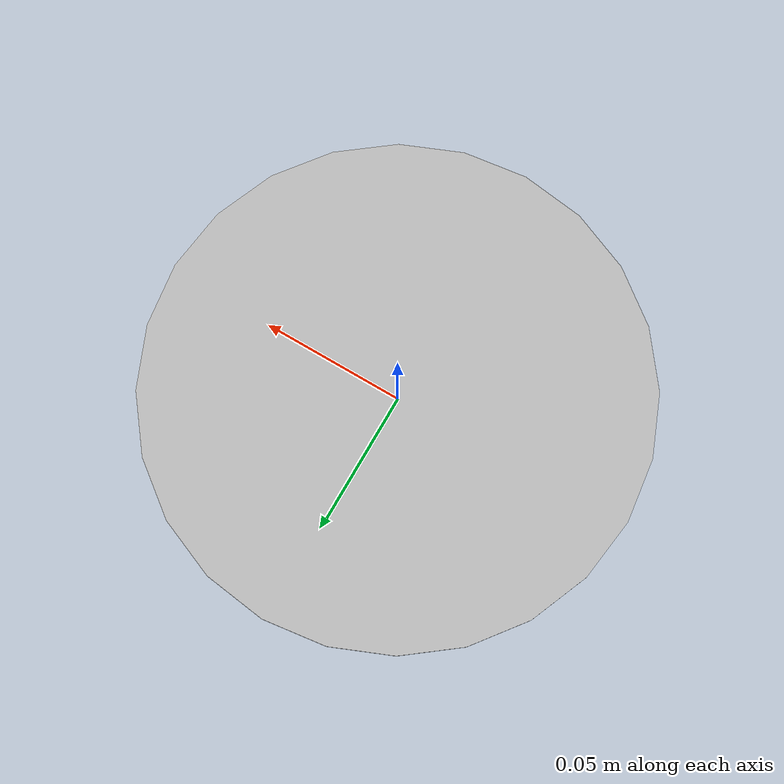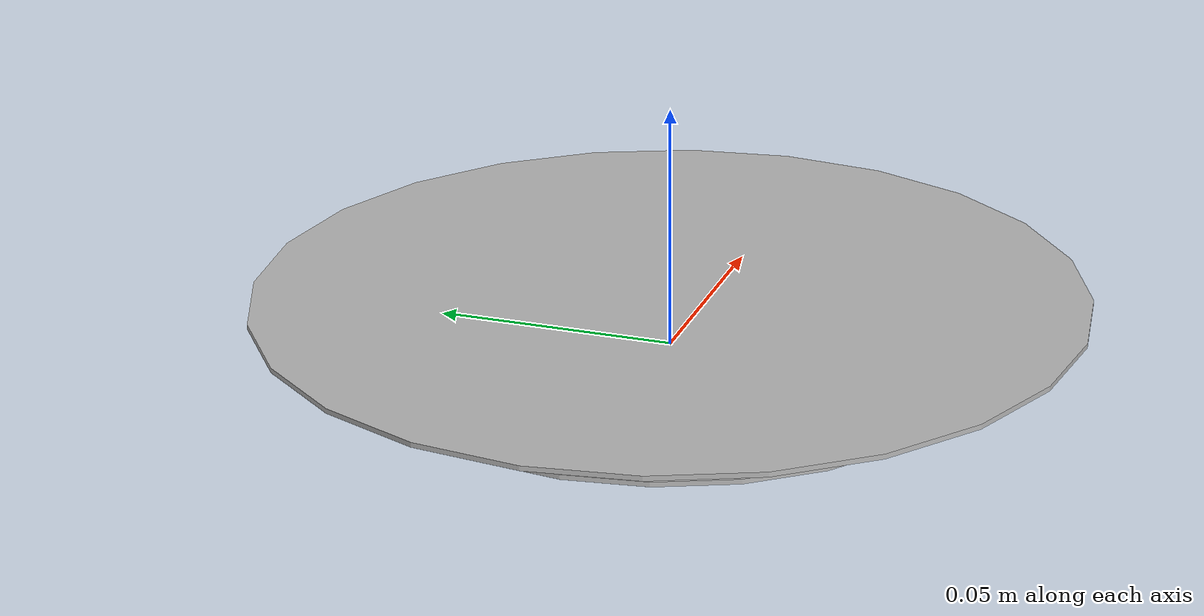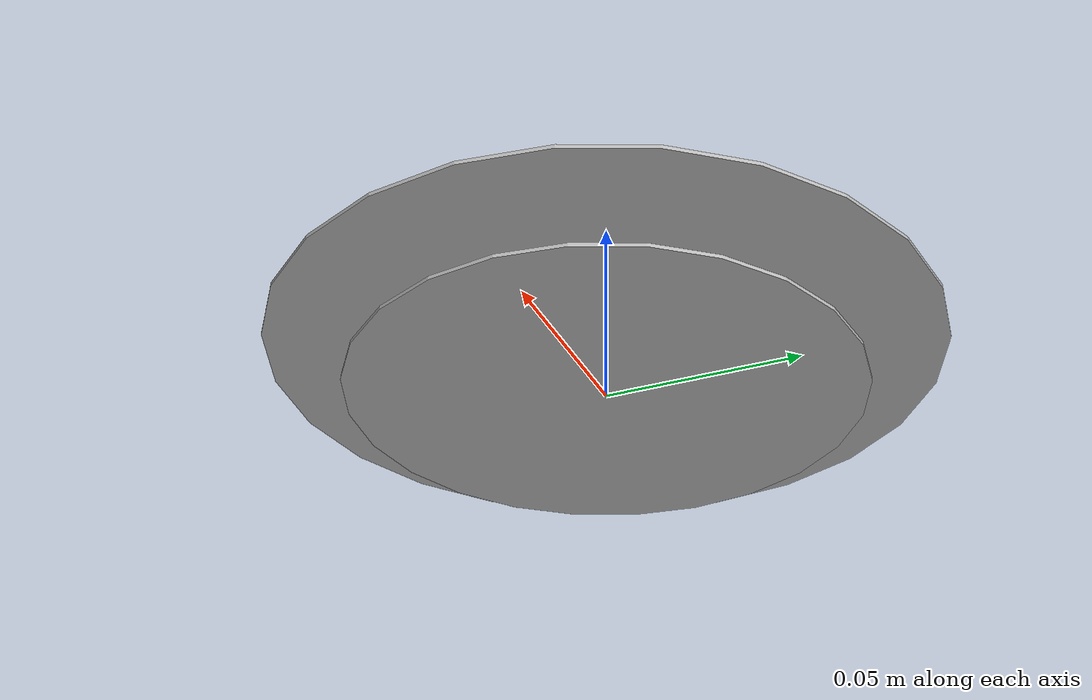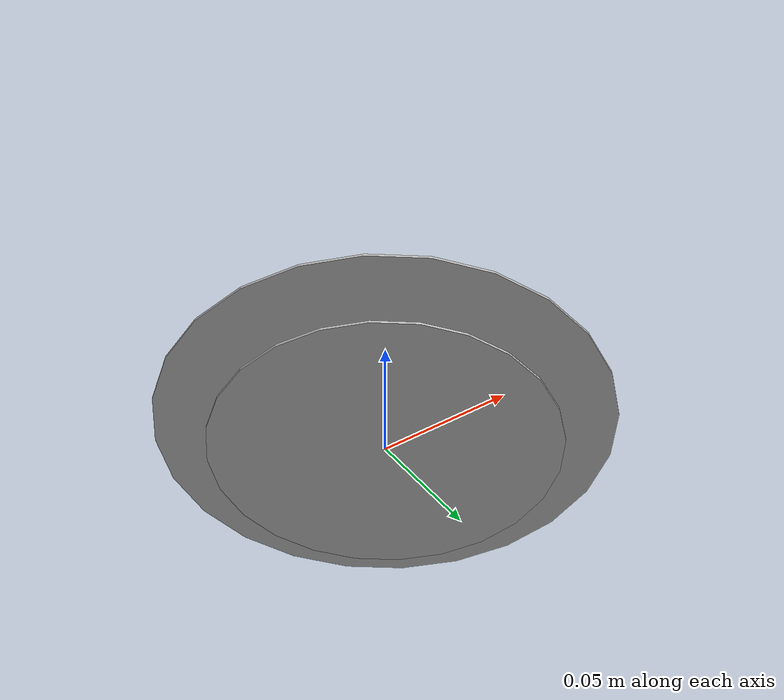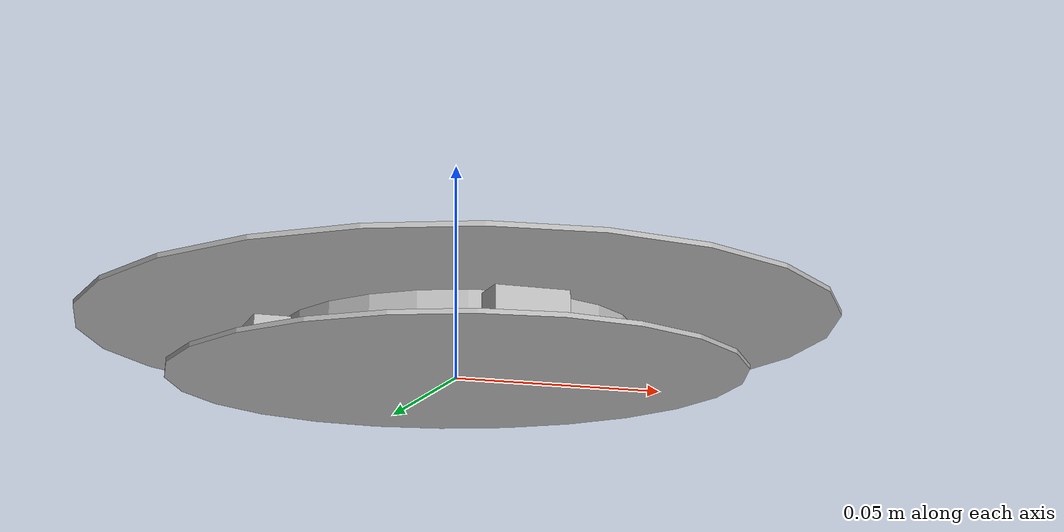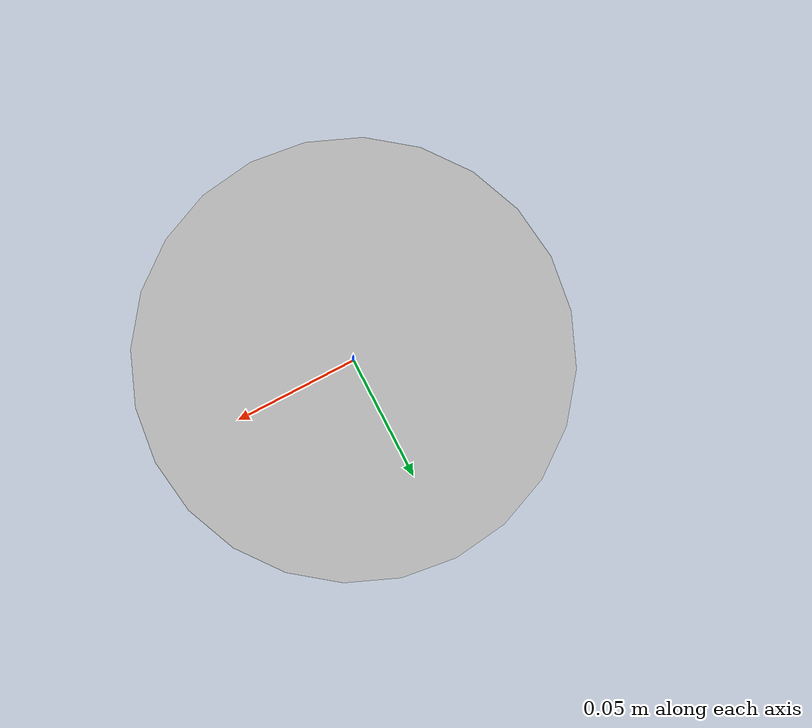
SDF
<?xml version='1.0'?>
<sdf version='1.6'>
		<model name="RotatingScanner">
			<self_collide>true</self_collide>
			<pose>0.0 0.0 0.0 0.0 0.0 0.0</pose>
			<!-- Start of parts of the pmodel RotatingScanner -->
				<!-- Start of declarations for part "RotatingScanner::longrange::0" -->
					<!-- Start of parts of part "RotatingScanner::longrange::0" -->
					<!-- End of parts of part "RotatingScanner::longrange::0" -->

					<!-- Start of links of part "RotatingScanner::longrange::0" -->
					<!-- link full name is RotatingScanner::longrange::0::BBody -->
					<link name="1-BBody">
							<pose>0.04399999976158142 0.0 0.005499999970197678 0.0 0.0 0.0</pose>
							<inertial>
								<pose>0.0 0.0 0.0 0.0 0.0 0.0</pose>
								<inertia>
									<ixx>1.0</ixx>
									<ixy>0.0</ixy>
									<ixz>0.0</ixz>
									<iyy>1.0</iyy>
									<iyz>0.0</iyz>
									<izz>1.0</izz>
								</inertia>
								<mass>0.0010000000474974513</mass>
							</inertial>
							<!-- body full name is RotatingScanner::longrange::0::BBody::Box -->
							<collision name="1--Box">
								<laser_retro>0.0</laser_retro>
								<pose>0.0 0.0 0.0 0.0 0.0 0.0</pose>
								<geometry>
									<box>
										<size>0.00800000037997961 0.01600000075995922 0.00800000037997961</size>
									</box>
								</geometry>
								<surface>
									<bounce>
										<restitution_coefficient>0.0</restitution_coefficient>
										<threshold>100000.0</threshold>
									</bounce>
									<friction>
										<ode>
											<mu>1.0</mu>
											<mu2>1.0</mu2>
											<fdir1>0.0 0.0 0.0</fdir1>
											<slip1>0.0</slip1>
											<slip2>0.0</slip2>
										</ode>
										<torsional>
											<coefficient>1.0</coefficient>
											<surface_radius>0.0</surface_radius>
										</torsional>
									</friction>
								</surface>
							</collision>
							<visual name="1--Box">
								<laser_retro>0.0</laser_retro>
								<pose>0.0 0.0 0.0 0.0 0.0 0.0</pose>
								<geometry>
									<box>
										<size>0.00800000037997961 0.01600000075995922 0.00800000037997961</size>
									</box>
								</geometry>
								<surface>
									<bounce>
										<restitution_coefficient>0.0</restitution_coefficient>
										<threshold>100000.0</threshold>
									</bounce>
									<friction>
										<ode>
											<mu>1.0</mu>
											<mu2>1.0</mu2>
											<fdir1>0.0 0.0 0.0</fdir1>
											<slip1>0.0</slip1>
											<slip2>0.0</slip2>
										</ode>
										<torsional>
											<coefficient>1.0</coefficient>
											<surface_radius>0.0</surface_radius>
										</torsional>
									</friction>
								</surface>
							</visual>
							<!-- WARNING: The SDF generator relies on annotations to specify in SDF aspects of the sensor that are
								 accounted for in the equations. -->
							<!-- sensor simple name is IRSensor -->
							<sensor name="IRSensor" type="ray">
								<pose>0.004000000189989805 -0.004000000189989805 0.0 0.0 0.0 0.0</pose>
								<visualize>true</visualize>
								<always_on>true</always_on>
								<update_rate>1</update_rate>
								<ray>
									<scan>
										<horizontal>
											<samples>1</samples>
											<resolution>1.0</resolution>
										</horizontal>
										<vertical>
											<samples>1</samples>
											<resolution>1.0</resolution>
										</vertical>
									</scan>
									<range>
										<min>0.0</min>
										<max>0.10000000149011612</max>
									</range>
								</ray>
							</sensor>
							<!-- WARNING: Annotation not found in actuator. RoboSim actuators have no explicit counterparts in SDF,
								 so the generator must rely on annotations to produce something meaningful in SDF. -->
					</link>
					<!-- End of links of part "RotatingScanner::longrange::0" -->

					<!-- Start of joints of part "RotatingScanner::longrange::0" -->
					<!-- End of joints of part "RotatingScanner::longrange::0" -->

					<!-- Start of fixed connections of part "RotatingScanner::longrange::0" -->

					<!-- End of fixed connections of part "RotatingScanner::longrange::0" -->
				<!-- End of declarations for part "RotatingScanner::longrange::0" -->
				<!-- Start of declarations for part "RotatingScanner::longrange::1" -->
					<!-- Start of parts of part "RotatingScanner::longrange::1" -->
					<!-- End of parts of part "RotatingScanner::longrange::1" -->

					<!-- Start of links of part "RotatingScanner::longrange::1" -->
					<!-- link full name is RotatingScanner::longrange::1::BBody -->
					<link name="2-BBody">
							<pose>2.0384628870162577E-6 0.04399999971436175 0.005499999970197678 0.0 0.0 1.5707499980926514</pose>
							<inertial>
								<pose>0.0 0.0 0.0 0.0 0.0 0.0</pose>
								<inertia>
									<ixx>1.0</ixx>
									<ixy>0.0</ixy>
									<ixz>0.0</ixz>
									<iyy>1.0</iyy>
									<iyz>0.0</iyz>
									<izz>1.0</izz>
								</inertia>
								<mass>0.0010000000474974513</mass>
							</inertial>
							<!-- body full name is RotatingScanner::longrange::1::BBody::Box -->
							<collision name="2--Box">
								<laser_retro>0.0</laser_retro>
								<pose>0.0 0.0 0.0 0.0 0.0 0.0</pose>
								<geometry>
									<box>
										<size>0.00800000037997961 0.01600000075995922 0.00800000037997961</size>
									</box>
								</geometry>
								<surface>
									<bounce>
										<restitution_coefficient>0.0</restitution_coefficient>
										<threshold>100000.0</threshold>
									</bounce>
									<friction>
										<ode>
											<mu>1.0</mu>
											<mu2>1.0</mu2>
											<fdir1>0.0 0.0 0.0</fdir1>
											<slip1>0.0</slip1>
											<slip2>0.0</slip2>
										</ode>
										<torsional>
											<coefficient>1.0</coefficient>
											<surface_radius>0.0</surface_radius>
										</torsional>
									</friction>
								</surface>
							</collision>
							<visual name="2--Box">
								<laser_retro>0.0</laser_retro>
								<pose>0.0 0.0 0.0 0.0 0.0 0.0</pose>
								<geometry>
									<box>
										<size>0.00800000037997961 0.01600000075995922 0.00800000037997961</size>
									</box>
								</geometry>
								<surface>
									<bounce>
										<restitution_coefficient>0.0</restitution_coefficient>
										<threshold>100000.0</threshold>
									</bounce>
									<friction>
										<ode>
											<mu>1.0</mu>
											<mu2>1.0</mu2>
											<fdir1>0.0 0.0 0.0</fdir1>
											<slip1>0.0</slip1>
											<slip2>0.0</slip2>
										</ode>
										<torsional>
											<coefficient>1.0</coefficient>
											<surface_radius>0.0</surface_radius>
										</torsional>
									</friction>
								</surface>
							</visual>
							<!-- WARNING: The SDF generator relies on annotations to specify in SDF aspects of the sensor that are
								 accounted for in the equations. -->
							<!-- sensor simple name is IRSensor -->
							<sensor name="IRSensor" type="ray">
								<pose>0.004000000189989805 -0.004000000189989805 0.0 0.0 0.0 0.0</pose>
								<visualize>true</visualize>
								<always_on>true</always_on>
								<update_rate>1</update_rate>
								<ray>
									<scan>
										<horizontal>
											<samples>1</samples>
											<resolution>1.0</resolution>
										</horizontal>
										<vertical>
											<samples>1</samples>
											<resolution>1.0</resolution>
										</vertical>
									</scan>
									<range>
										<min>0.0</min>
										<max>0.10000000149011612</max>
									</range>
								</ray>
							</sensor>
							<!-- WARNING: Annotation not found in actuator. RoboSim actuators have no explicit counterparts in SDF,
								 so the generator must rely on annotations to produce something meaningful in SDF. -->
					</link>
					<!-- End of links of part "RotatingScanner::longrange::1" -->

					<!-- Start of joints of part "RotatingScanner::longrange::1" -->
					<!-- End of joints of part "RotatingScanner::longrange::1" -->

					<!-- Start of fixed connections of part "RotatingScanner::longrange::1" -->

					<!-- End of fixed connections of part "RotatingScanner::longrange::1" -->
				<!-- End of declarations for part "RotatingScanner::longrange::1" -->
				<!-- Start of declarations for part "RotatingScanner::longrange::2" -->
					<!-- Start of parts of part "RotatingScanner::longrange::2" -->
					<!-- End of parts of part "RotatingScanner::longrange::2" -->

					<!-- Start of links of part "RotatingScanner::longrange::2" -->
					<!-- link full name is RotatingScanner::longrange::2::BBody -->
					<link name="3-BBody">
							<pose>-0.04399999957270274 4.076925769657263E-6 0.005499999970197678 0.0 0.0 3.1414999961853027</pose>
							<inertial>
								<pose>0.0 0.0 0.0 0.0 0.0 0.0</pose>
								<inertia>
									<ixx>1.0</ixx>
									<ixy>0.0</ixy>
									<ixz>0.0</ixz>
									<iyy>1.0</iyy>
									<iyz>0.0</iyz>
									<izz>1.0</izz>
								</inertia>
								<mass>0.0010000000474974513</mass>
							</inertial>
							<!-- body full name is RotatingScanner::longrange::2::BBody::Box -->
							<collision name="3--Box">
								<laser_retro>0.0</laser_retro>
								<pose>0.0 0.0 0.0 0.0 0.0 0.0</pose>
								<geometry>
									<box>
										<size>0.00800000037997961 0.01600000075995922 0.00800000037997961</size>
									</box>
								</geometry>
								<surface>
									<bounce>
										<restitution_coefficient>0.0</restitution_coefficient>
										<threshold>100000.0</threshold>
									</bounce>
									<friction>
										<ode>
											<mu>1.0</mu>
											<mu2>1.0</mu2>
											<fdir1>0.0 0.0 0.0</fdir1>
											<slip1>0.0</slip1>
											<slip2>0.0</slip2>
										</ode>
										<torsional>
											<coefficient>1.0</coefficient>
											<surface_radius>0.0</surface_radius>
										</torsional>
									</friction>
								</surface>
							</collision>
							<visual name="3--Box">
								<laser_retro>0.0</laser_retro>
								<pose>0.0 0.0 0.0 0.0 0.0 0.0</pose>
								<geometry>
									<box>
										<size>0.00800000037997961 0.01600000075995922 0.00800000037997961</size>
									</box>
								</geometry>
								<surface>
									<bounce>
										<restitution_coefficient>0.0</restitution_coefficient>
										<threshold>100000.0</threshold>
									</bounce>
									<friction>
										<ode>
											<mu>1.0</mu>
											<mu2>1.0</mu2>
											<fdir1>0.0 0.0 0.0</fdir1>
											<slip1>0.0</slip1>
											<slip2>0.0</slip2>
										</ode>
										<torsional>
											<coefficient>1.0</coefficient>
											<surface_radius>0.0</surface_radius>
										</torsional>
									</friction>
								</surface>
							</visual>
							<!-- WARNING: The SDF generator relies on annotations to specify in SDF aspects of the sensor that are
								 accounted for in the equations. -->
							<!-- sensor simple name is IRSensor -->
							<sensor name="IRSensor" type="ray">
								<pose>0.004000000189989805 -0.004000000189989805 0.0 0.0 0.0 0.0</pose>
								<visualize>true</visualize>
								<always_on>true</always_on>
								<update_rate>1</update_rate>
								<ray>
									<scan>
										<horizontal>
											<samples>1</samples>
											<resolution>1.0</resolution>
										</horizontal>
										<vertical>
											<samples>1</samples>
											<resolution>1.0</resolution>
										</vertical>
									</scan>
									<range>
										<min>0.0</min>
										<max>0.10000000149011612</max>
									</range>
								</ray>
							</sensor>
							<!-- WARNING: Annotation not found in actuator. RoboSim actuators have no explicit counterparts in SDF,
								 so the generator must rely on annotations to produce something meaningful in SDF. -->
					</link>
					<!-- End of links of part "RotatingScanner::longrange::2" -->

					<!-- Start of joints of part "RotatingScanner::longrange::2" -->
					<!-- End of joints of part "RotatingScanner::longrange::2" -->

					<!-- Start of fixed connections of part "RotatingScanner::longrange::2" -->

					<!-- End of fixed connections of part "RotatingScanner::longrange::2" -->
				<!-- End of declarations for part "RotatingScanner::longrange::2" -->
				<!-- Start of declarations for part "RotatingScanner::longrange::3" -->
					<!-- Start of parts of part "RotatingScanner::longrange::3" -->
					<!-- End of parts of part "RotatingScanner::longrange::3" -->

					<!-- Start of links of part "RotatingScanner::longrange::3" -->
					<!-- link full name is RotatingScanner::longrange::3::BBody -->
					<link name="4-BBody">
							<pose>-6.115388643547765E-6 -0.04399999933660439 0.005499999970197678 0.0 0.0 4.712249994277954</pose>
							<inertial>
								<pose>0.0 0.0 0.0 0.0 0.0 0.0</pose>
								<inertia>
									<ixx>1.0</ixx>
									<ixy>0.0</ixy>
									<ixz>0.0</ixz>
									<iyy>1.0</iyy>
									<iyz>0.0</iyz>
									<izz>1.0</izz>
								</inertia>
								<mass>0.0010000000474974513</mass>
							</inertial>
							<!-- body full name is RotatingScanner::longrange::3::BBody::Box -->
							<collision name="4--Box">
								<laser_retro>0.0</laser_retro>
								<pose>0.0 0.0 0.0 0.0 0.0 0.0</pose>
								<geometry>
									<box>
										<size>0.00800000037997961 0.01600000075995922 0.00800000037997961</size>
									</box>
								</geometry>
								<surface>
									<bounce>
										<restitution_coefficient>0.0</restitution_coefficient>
										<threshold>100000.0</threshold>
									</bounce>
									<friction>
										<ode>
											<mu>1.0</mu>
											<mu2>1.0</mu2>
											<fdir1>0.0 0.0 0.0</fdir1>
											<slip1>0.0</slip1>
											<slip2>0.0</slip2>
										</ode>
										<torsional>
											<coefficient>1.0</coefficient>
											<surface_radius>0.0</surface_radius>
										</torsional>
									</friction>
								</surface>
							</collision>
							<visual name="4--Box">
								<laser_retro>0.0</laser_retro>
								<pose>0.0 0.0 0.0 0.0 0.0 0.0</pose>
								<geometry>
									<box>
										<size>0.00800000037997961 0.01600000075995922 0.00800000037997961</size>
									</box>
								</geometry>
								<surface>
									<bounce>
										<restitution_coefficient>0.0</restitution_coefficient>
										<threshold>100000.0</threshold>
									</bounce>
									<friction>
										<ode>
											<mu>1.0</mu>
											<mu2>1.0</mu2>
											<fdir1>0.0 0.0 0.0</fdir1>
											<slip1>0.0</slip1>
											<slip2>0.0</slip2>
										</ode>
										<torsional>
											<coefficient>1.0</coefficient>
											<surface_radius>0.0</surface_radius>
										</torsional>
									</friction>
								</surface>
							</visual>
							<!-- WARNING: The SDF generator relies on annotations to specify in SDF aspects of the sensor that are
								 accounted for in the equations. -->
							<!-- sensor simple name is IRSensor -->
							<sensor name="IRSensor" type="ray">
								<pose>0.004000000189989805 -0.004000000189989805 0.0 0.0 0.0 0.0</pose>
								<visualize>true</visualize>
								<always_on>true</always_on>
								<update_rate>1</update_rate>
								<ray>
									<scan>
										<horizontal>
											<samples>1</samples>
											<resolution>1.0</resolution>
										</horizontal>
										<vertical>
											<samples>1</samples>
											<resolution>1.0</resolution>
										</vertical>
									</scan>
									<range>
										<min>0.0</min>
										<max>0.10000000149011612</max>
									</range>
								</ray>
							</sensor>
							<!-- WARNING: Annotation not found in actuator. RoboSim actuators have no explicit counterparts in SDF,
								 so the generator must rely on annotations to produce something meaningful in SDF. -->
					</link>
					<!-- End of links of part "RotatingScanner::longrange::3" -->

					<!-- Start of joints of part "RotatingScanner::longrange::3" -->
					<!-- End of joints of part "RotatingScanner::longrange::3" -->

					<!-- Start of fixed connections of part "RotatingScanner::longrange::3" -->

					<!-- End of fixed connections of part "RotatingScanner::longrange::3" -->
				<!-- End of declarations for part "RotatingScanner::longrange::3" -->
			<!-- End of parts of the pmodel RotatingScanner -->

			<!-- Start of links of the pmodel RotatingScanner -->
			<!-- link full name is RotatingScanner::Base -->
			<link name="5-Base">
					<pose>0.0 0.0 0.0 0.0 0.0 0.0</pose>
					<inertial>
						<pose>0.0 0.0 0.0 0.0 0.0 0.0</pose>
						<inertia>
							<ixx>1.0</ixx>
							<ixy>0.0</ixy>
							<ixz>0.0</ixz>
							<iyy>1.0</iyy>
							<iyz>0.0</iyz>
							<izz>1.0</izz>
						</inertia>
						<mass>0.009999999776482582</mass>
					</inertial>
					<!-- body full name is RotatingScanner::Base::Frame -->
					<collision name="5--Frame">
						<laser_retro>0.0</laser_retro>
						<pose>0.0 0.0 0.0 0.0 0.0 0.0</pose>
						<geometry>
							<cylinder>
								<radius>0.06499999761581421</radius>
								<length>0.0010000000474974513</length>
							</cylinder>
						</geometry>
						<surface>
							<bounce>
								<restitution_coefficient>0.0</restitution_coefficient>
								<threshold>100000.0</threshold>
							</bounce>
							<friction>
								<ode>
									<mu>1.0</mu>
									<mu2>1.0</mu2>
									<fdir1>0.0 0.0 0.0</fdir1>
									<slip1>0.0</slip1>
									<slip2>0.0</slip2>
								</ode>
								<torsional>
									<coefficient>1.0</coefficient>
									<surface_radius>0.0</surface_radius>
								</torsional>
							</friction>
						</surface>
					</collision>
					<visual name="5--Frame">
						<laser_retro>0.0</laser_retro>
						<pose>0.0 0.0 0.0 0.0 0.0 0.0</pose>
						<geometry>
							<cylinder>
								<radius>0.06499999761581421</radius>
								<length>0.0010000000474974513</length>
							</cylinder>
						</geometry>
						<surface>
							<bounce>
								<restitution_coefficient>0.0</restitution_coefficient>
								<threshold>100000.0</threshold>
							</bounce>
							<friction>
								<ode>
									<mu>1.0</mu>
									<mu2>1.0</mu2>
									<fdir1>0.0 0.0 0.0</fdir1>
									<slip1>0.0</slip1>
									<slip2>0.0</slip2>
								</ode>
								<torsional>
									<coefficient>1.0</coefficient>
									<surface_radius>0.0</surface_radius>
								</torsional>
							</friction>
						</surface>
					</visual>
			</link>
			<!-- link full name is RotatingScanner::Core -->
			<link name="6-Core">
					<pose>0.0 0.0 0.005499999970197678 0.0 0.0 0.0</pose>
					<inertial>
						<pose>0.0 0.0 0.0 0.0 0.0 0.0</pose>
						<inertia>
							<ixx>1.0</ixx>
							<ixy>0.0</ixy>
							<ixz>0.0</ixz>
							<iyy>1.0</iyy>
							<iyz>0.0</iyz>
							<izz>1.0</izz>
						</inertia>
						<mass>1.0</mass>
					</inertial>
					<!-- body full name is RotatingScanner::Core::Spine -->
					<collision name="6--Spine">
						<laser_retro>0.0</laser_retro>
						<pose>0.0 0.0 0.0 0.0 0.0 0.0</pose>
						<geometry>
							<cylinder>
								<radius>0.03999999910593033</radius>
								<length>0.009999999776482582</length>
							</cylinder>
						</geometry>
						<surface>
							<bounce>
								<restitution_coefficient>0.0</restitution_coefficient>
								<threshold>100000.0</threshold>
							</bounce>
							<friction>
								<ode>
									<mu>1.0</mu>
									<mu2>1.0</mu2>
									<fdir1>0.0 0.0 0.0</fdir1>
									<slip1>0.0</slip1>
									<slip2>0.0</slip2>
								</ode>
								<torsional>
									<coefficient>1.0</coefficient>
									<surface_radius>0.0</surface_radius>
								</torsional>
							</friction>
						</surface>
					</collision>
					<visual name="6--Spine">
						<laser_retro>0.0</laser_retro>
						<pose>0.0 0.0 0.0 0.0 0.0 0.0</pose>
						<geometry>
							<cylinder>
								<radius>0.03999999910593033</radius>
								<length>0.009999999776482582</length>
							</cylinder>
						</geometry>
						<surface>
							<bounce>
								<restitution_coefficient>0.0</restitution_coefficient>
								<threshold>100000.0</threshold>
							</bounce>
							<friction>
								<ode>
									<mu>1.0</mu>
									<mu2>1.0</mu2>
									<fdir1>0.0 0.0 0.0</fdir1>
									<slip1>0.0</slip1>
									<slip2>0.0</slip2>
								</ode>
								<torsional>
									<coefficient>1.0</coefficient>
									<surface_radius>0.0</surface_radius>
								</torsional>
							</friction>
						</surface>
					</visual>
					<!-- body full name is RotatingScanner::Core::Top -->
					<collision name="7--Top">
						<laser_retro>0.0</laser_retro>
						<pose>0.0 0.0 0.005499999970197678 0.0 0.0 0.0</pose>
						<geometry>
							<cylinder>
								<radius>0.08500000089406967</radius>
								<length>0.0010000000474974513</length>
							</cylinder>
						</geometry>
						<surface>
							<bounce>
								<restitution_coefficient>0.0</restitution_coefficient>
								<threshold>100000.0</threshold>
							</bounce>
							<friction>
								<ode>
									<mu>1.0</mu>
									<mu2>1.0</mu2>
									<fdir1>0.0 0.0 0.0</fdir1>
									<slip1>0.0</slip1>
									<slip2>0.0</slip2>
								</ode>
								<torsional>
									<coefficient>1.0</coefficient>
									<surface_radius>0.0</surface_radius>
								</torsional>
							</friction>
						</surface>
					</collision>
					<visual name="7--Top">
						<laser_retro>0.0</laser_retro>
						<pose>0.0 0.0 0.005499999970197678 0.0 0.0 0.0</pose>
						<geometry>
							<cylinder>
								<radius>0.08500000089406967</radius>
								<length>0.0010000000474974513</length>
							</cylinder>
						</geometry>
						<surface>
							<bounce>
								<restitution_coefficient>0.0</restitution_coefficient>
								<threshold>100000.0</threshold>
							</bounce>
							<friction>
								<ode>
									<mu>1.0</mu>
									<mu2>1.0</mu2>
									<fdir1>0.0 0.0 0.0</fdir1>
									<slip1>0.0</slip1>
									<slip2>0.0</slip2>
								</ode>
								<torsional>
									<coefficient>1.0</coefficient>
									<surface_radius>0.0</surface_radius>
								</torsional>
							</friction>
						</surface>
					</visual>
			</link>
			<!-- End of links of the pmodel RotatingScanner -->

			<!-- Start of joints of the pmodel RotatingScanner -->
			<!-- Full name of joint: RotatingScanner::Base::rj from RotatingScanner::Base to RotatingScanner::Core-->
			<joint name="7-rj" type="revolute">
				<pose>0.0 0.0 -0.005499999970197678 0.0 -0.0 0.0</pose>
				<parent>5-Base</parent>
				<child>6-Core</child>
				<!-- WARNING: The SDF generator relies on annotations to specify in SDF aspects of the joint that are
					 accounted for in the equations. -->
				<axis>
					<xyz>0 0 1</xyz>
				</axis>
			</joint>
			<!-- End of joints of the pmodel RotatingScanner -->

			<!-- Start of fixed connections of the pmodel RotatingScanner -->
			<!-- fixed joint full name is RotatingScanner::Core::fixedJoint::RotatingScanner::longrange::0::BBody from RotatingScanner::Core to RotatingScanner::longrange::0::BBody -->
			<joint name="8-fixedJoint" type="fixed">
				<parent>6-Core</parent>
				<child>1-BBody</child>
				<axis><xyz>0 0 1</xyz></axis>
			</joint>
			<!-- fixed joint full name is RotatingScanner::Core::fixedJoint::RotatingScanner::longrange::1::BBody from RotatingScanner::Core to RotatingScanner::longrange::1::BBody -->
			<joint name="9-fixedJoint" type="fixed">
				<parent>6-Core</parent>
				<child>2-BBody</child>
				<axis><xyz>0 0 1</xyz></axis>
			</joint>
			<!-- fixed joint full name is RotatingScanner::Core::fixedJoint::RotatingScanner::longrange::2::BBody from RotatingScanner::Core to RotatingScanner::longrange::2::BBody -->
			<joint name="10-fixedJoint" type="fixed">
				<parent>6-Core</parent>
				<child>3-BBody</child>
				<axis><xyz>0 0 1</xyz></axis>
			</joint>
			<!-- fixed joint full name is RotatingScanner::Core::fixedJoint::RotatingScanner::longrange::3::BBody from RotatingScanner::Core to RotatingScanner::longrange::3::BBody -->
			<joint name="11-fixedJoint" type="fixed">
				<parent>6-Core</parent>
				<child>4-BBody</child>
				<axis><xyz>0 0 1</xyz></axis>
			</joint>
			<!-- End of fixed connections of the pmodel RotatingScanner -->
		</model>
</sdf>
